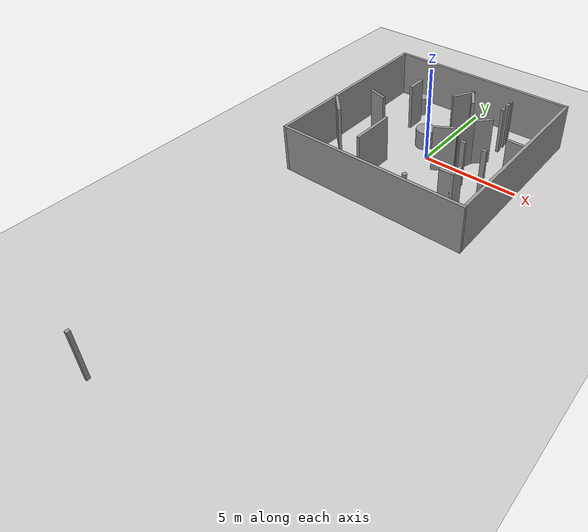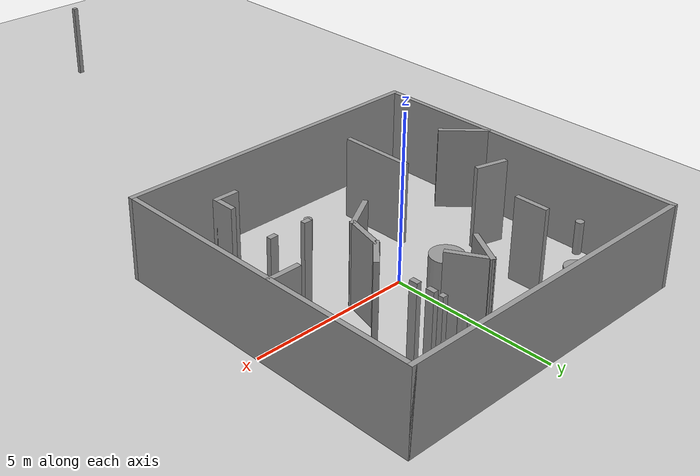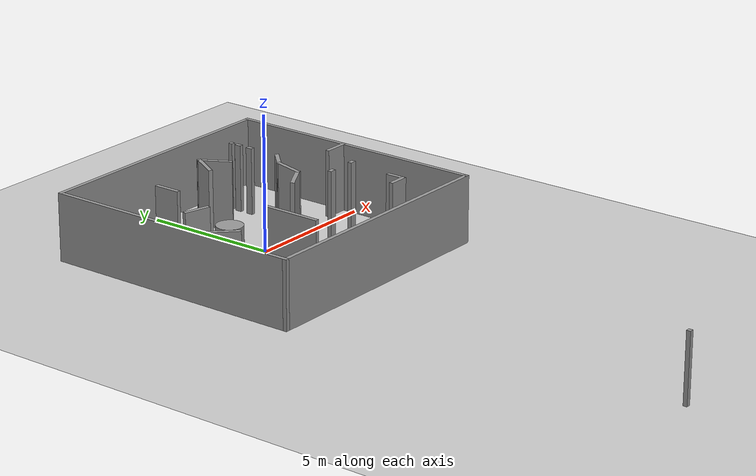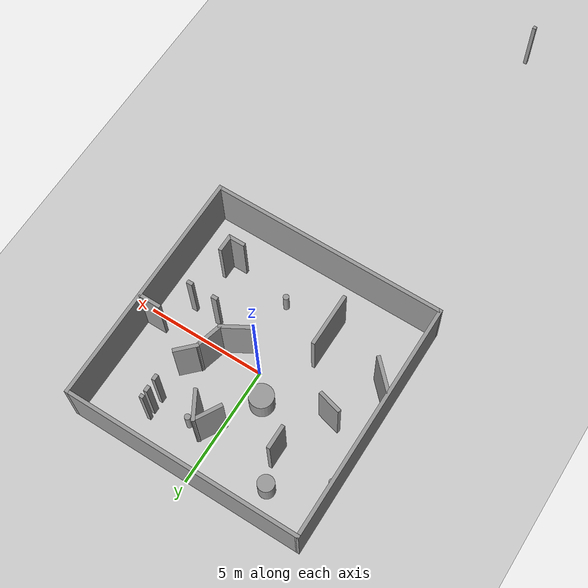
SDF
<sdf version="1.6">
 <world name="default">
  <light name="sun" type="directional">
   <pose>0 0 10 0 -0 0</pose>
   <diffuse>0.8 0.8 0.8 1</diffuse>
   <specular>0.2 0.2 0.2 1</specular>
   <attenuation>
    <range>1000</range>
    <constant>0.9</constant>
    <linear>0.01</linear>
    <quadratic>0.001</quadratic>
   </attenuation>
   <direction>-0.5 0.1 -0.9</direction>
  </light>
  <model name="ground_plane">
   <static>1</static>
   <link name="link">
    <collision name="collision">
     <geometry><plane><normal>0 0 1</normal><size>100 100</size></plane></geometry>
     <surface><friction><ode><mu>100</mu><mu2>50</mu2></ode></friction></surface>
    </collision>
    <visual name="visual">
     <cast_shadows>0</cast_shadows>
     <geometry><plane><normal>0 0 1</normal><size>100 100</size></plane></geometry>
     <material>
      <ambient>1 1 1 1</ambient>
      <diffuse>0.8 0.8 0.8 1</diffuse>
      <specular>0.01 0.01 0.01 1</specular>
     </material>
    </visual>
   </link>
  </model>
  <gravity>0 0 -9.8</gravity>
  <magnetic_field>6e-06 2.3e-05 -4.2e-05</magnetic_field>
  <atmosphere type="adiabatic"/>
  <physics name="default_physics" default="0" type="ode">
   <max_step_size>0.001</max_step_size>
   <real_time_factor>1</real_time_factor>
   <real_time_update_rate>1000</real_time_update_rate>
  </physics>
  <scene><ambient>0.4 0.4 0.4 1</ambient><background>0.7 0.7 0.7 1</background><shadows>1</shadows></scene>
  <spherical_coordinates>
   <surface_model>EARTH_WGS84</surface_model>
   <latitude_deg>0</latitude_deg>
   <longitude_deg>0</longitude_deg>
   <elevation>0</elevation>
   <heading_deg>0</heading_deg>
  </spherical_coordinates>
  <plugin name="gazebo_occupancy_map" filename="libgazebo_2Dmap_plugin.so">
   <map_resolution>0.05</map_resolution>
   <map_height>0.01</map_height>
   <map_size_x>50</map_size_x>
   <map_size_y>50</map_size_y>
  </plugin>
  <model name="10x10_training">
   <pose>0.025359 -0.006233 0 0 -0 0</pose>
   <link name="Wall_11">
    <collision name="Wall_11_Collision">
     <geometry><box><size>10 0.15 2.5</size></box></geometry>
     <pose>0 0 1.25 0 -0 0</pose>
    </collision>
    <visual name="Wall_11_Visual">
     <pose>0 0 1.25 0 -0 0</pose>
     <geometry><box><size>10 0.15 2.5</size></box></geometry>
     <material>
      <script><uri>file://media/materials/scripts/gazebo.material</uri><name>Gazebo/Grey</name></script>
      <ambient>1 1 1 1</ambient>
     </material>
     <meta><layer>0</layer></meta>
    </visual>
    <pose>0 -4.925 0 0 -0 3.14159</pose>
   </link>
   <link name="Wall_12">
    <collision name="Wall_12_Collision">
     <geometry><box><size>10 0.15 2.5</size></box></geometry>
     <pose>0 0 1.25 0 -0 0</pose>
    </collision>
    <visual name="Wall_12_Visual">
     <pose>0 0 1.25 0 -0 0</pose>
     <geometry><box><size>10 0.15 2.5</size></box></geometry>
     <material>
      <script><uri>file://media/materials/scripts/gazebo.material</uri><name>Gazebo/Grey</name></script>
      <ambient>1 1 1 1</ambient>
     </material>
     <meta><layer>0</layer></meta>
    </visual>
    <pose>-4.925 0 0 0 -0 1.5708</pose>
   </link>
   <link name="Wall_13">
    <collision name="Wall_13_Collision">
     <geometry><box><size>10 0.15 2.5</size></box></geometry>
     <pose>0 0 1.25 0 -0 0</pose>
    </collision>
    <visual name="Wall_13_Visual">
     <pose>0 0 1.25 0 -0 0</pose>
     <geometry><box><size>10 0.15 2.5</size></box></geometry>
     <material>
      <script><uri>file://media/materials/scripts/gazebo.material</uri><name>Gazebo/Grey</name></script>
      <ambient>1 1 1 1</ambient>
     </material>
     <meta><layer>0</layer></meta>
    </visual>
    <pose>0 4.925 0 0 -0 0</pose>
   </link>
   <link name="Wall_15">
    <collision name="Wall_15_Collision">
     <geometry><box><size>1 0.15 2.5</size></box></geometry>
     <pose>0 0 1.25 0 -0 0</pose>
    </collision>
    <visual name="Wall_15_Visual">
     <pose>0 0 1.25 0 -0 0</pose>
     <geometry><box><size>1 0.15 2.5</size></box></geometry>
     <material>
      <script><uri>file://media/materials/scripts/gazebo.material</uri><name>Gazebo/Grey</name></script>
      <ambient>1 1 1 1</ambient>
     </material>
     <meta><layer>0</layer></meta>
    </visual>
    <pose>-2.37163 2.36716 0 0 0 -1.5708</pose>
   </link>
   <link name="Wall_17">
    <collision name="Wall_17_Collision">
     <geometry><box><size>1.25 0.15 2.5</size></box></geometry>
     <pose>0 0 1.25 0 -0 0</pose>
    </collision>
    <visual name="Wall_17_Visual">
     <pose>0 0 1.25 0 -0 0</pose>
     <geometry><box><size>1.25 0.15 2.5</size></box></geometry>
     <material>
      <script><uri>file://media/materials/scripts/gazebo.material</uri><name>Gazebo/Grey</name></script>
      <ambient>1 1 1 1</ambient>
     </material>
     <meta><layer>0</layer></meta>
    </visual>
    <pose>0.198435 2.91724 0 0 0 -2.0944</pose>
   </link>
   <link name="Wall_19">
    <collision name="Wall_19_Collision">
     <geometry><box><size>1.25 0.15 2.5</size></box></geometry>
     <pose>0 0 1.25 0 -0 0</pose>
    </collision>
    <visual name="Wall_19_Visual">
     <pose>0 0 1.25 0 -0 0</pose>
     <geometry><box><size>1.25 0.15 2.5</size></box></geometry>
     <material>
      <script><uri>file://media/materials/scripts/gazebo.material</uri><name>Gazebo/Grey</name></script>
      <ambient>1 1 1 1</ambient>
     </material>
     <meta><layer>0</layer></meta>
    </visual>
    <pose>0.748435 2.91724 0 0 -0 2.0944</pose>
   </link>
   <link name="Wall_21">
    <collision name="Wall_21_Collision">
     <geometry><box><size>1 0.15 2.5</size></box></geometry>
     <pose>0 0 1.25 0 -0 0</pose>
    </collision>
    <visual name="Wall_21_Visual">
     <pose>0 0 1.25 0 -0 0</pose>
     <geometry><box><size>1 0.15 2.5</size></box></geometry>
     <material>
      <script><uri>file://media/materials/scripts/gazebo.material</uri><name>Gazebo/Grey</name></script>
      <ambient>1 1 1 1</ambient>
     </material>
     <meta><layer>0</layer></meta>
    </visual>
    <pose>-3.31415 0.24214 0 0 -0 2.87979</pose>
   </link>
   <link name="Wall_23">
    <collision name="Wall_23_Collision">
     <geometry><box><size>1 0.15 2.5</size></box></geometry>
     <pose>0 0 1.25 0 -0 0</pose>
    </collision>
    <visual name="Wall_23_Visual">
     <pose>0 0 1.25 0 -0 0</pose>
     <geometry><box><size>1 0.15 2.5</size></box></geometry>
     <material>
      <script><uri>file://media/materials/scripts/gazebo.material</uri><name>Gazebo/Grey</name></script>
      <ambient>1 1 1 1</ambient>
     </material>
     <meta><layer>0</layer></meta>
    </visual>
    <pose>2.25467 1.28885 0 0 0 -2.35619</pose>
   </link>
   <link name="Wall_24">
    <collision name="Wall_24_Collision">
     <geometry><box><size>1.25 0.15 2.5</size></box></geometry>
     <pose>0 0 1.25 0 -0 0</pose>
    </collision>
    <visual name="Wall_24_Visual">
     <pose>0 0 1.25 0 -0 0</pose>
     <geometry><box><size>1.25 0.15 2.5</size></box></geometry>
     <material>
      <script><uri>file://media/materials/scripts/gazebo.material</uri><name>Gazebo/Grey</name></script>
      <ambient>1 1 1 1</ambient>
     </material>
     <meta><layer>0</layer></meta>
    </visual>
    <pose>1.8118 0.45707 0 0 0 -1.8326</pose>
   </link>
   <link name="Wall_25">
    <collision name="Wall_25_Collision">
     <geometry><box><size>1.25 0.15 2.5</size></box></geometry>
     <pose>0 0 1.25 0 -0 0</pose>
    </collision>
    <visual name="Wall_25_Visual">
     <pose>0 0 1.25 0 -0 0</pose>
     <geometry><box><size>1.25 0.15 2.5</size></box></geometry>
     <material>
      <script><uri>file://media/materials/scripts/gazebo.material</uri><name>Gazebo/Grey</name></script>
      <ambient>1 1 1 1</ambient>
     </material>
     <meta><layer>0</layer></meta>
    </visual>
    <pose>1.19313 -0.349189 0 0 0 -2.61799</pose>
   </link>
   <link name="Wall_27">
    <collision name="Wall_27_Collision">
     <geometry><box><size>0.75 0.15 2.5</size></box></geometry>
     <pose>0 0 1.25 0 -0 0</pose>
    </collision>
    <visual name="Wall_27_Visual">
     <pose>0 0 1.25 0 -0 0</pose>
     <geometry><box><size>0.75 0.15 2.5</size></box></geometry>
     <material>
      <script><uri>file://media/materials/scripts/gazebo.material</uri><name>Gazebo/Grey</name></script>
      <ambient>1 1 1 1</ambient>
     </material>
     <meta><layer>0</layer></meta>
    </visual>
    <pose>3.41102 -3.03745 0 0 -0 1.5708</pose>
   </link>
   <link name="Wall_29">
    <collision name="Wall_29_Collision">
     <geometry><box><size>0.75 0.15 2.5</size></box></geometry>
     <pose>0 0 1.25 0 -0 0</pose>
    </collision>
    <visual name="Wall_29_Visual">
     <pose>0 0 1.25 0 -0 0</pose>
     <geometry><box><size>0.75 0.15 2.5</size></box></geometry>
     <material>
      <script><uri>file://media/materials/scripts/gazebo.material</uri><name>Gazebo/Grey</name></script>
      <ambient>1 1 1 1</ambient>
     </material>
     <meta><layer>0</layer></meta>
    </visual>
    <pose>3.11102 -3.33745 0 0 -0 3.14159</pose>
   </link>
   <link name="Wall_31">
    <collision name="Wall_31_Collision">
     <geometry><box><size>2.25 0.15 2.5</size></box></geometry>
     <pose>0 0 1.25 0 -0 0</pose>
    </collision>
    <visual name="Wall_31_Visual">
     <pose>0 0 1.25 0 -0 0</pose>
     <geometry><box><size>2.25 0.15 2.5</size></box></geometry>
     <material>
      <script><uri>file://media/materials/scripts/gazebo.material</uri><name>Gazebo/Grey</name></script>
      <ambient>1 1 1 1</ambient>
     </material>
     <meta><layer>0</layer></meta>
    </visual>
    <pose>-1.60832 -2.44448 0 0 0 -1.5708</pose>
   </link>
   <link name="Wall_33">
    <collision name="Wall_33_Collision">
     <geometry><box><size>1 0.15 2.5</size></box></geometry>
     <pose>0 0 1.25 0 -0 0</pose>
    </collision>
    <visual name="Wall_33_Visual">
     <pose>0 0 1.25 0 -0 0</pose>
     <geometry><box><size>1 0.15 2.5</size></box></geometry>
     <material>
      <script><uri>file://media/materials/scripts/gazebo.material</uri><name>Gazebo/Grey</name></script>
      <ambient>1 1 1 1</ambient>
     </material>
     <meta><layer>0</layer></meta>
    </visual>
    <pose>4.48951 0.45597 0 0 -0 3.14159</pose>
   </link>
   <link name="Wall_35">
    <collision name="Wall_35_Collision">
     <geometry><box><size>1.5 0.15 2.5</size></box></geometry>
     <pose>0 0 1.25 0 -0 0</pose>
    </collision>
    <visual name="Wall_35_Visual">
     <pose>0 0 1.25 0 -0 0</pose>
     <geometry><box><size>1.5 0.15 2.5</size></box></geometry>
     <material>
      <script><uri>file://media/materials/scripts/gazebo.material</uri><name>Gazebo/Grey</name></script>
      <ambient>1 1 1 1</ambient>
     </material>
     <meta><layer>0</layer></meta>
    </visual>
    <pose>-4.41557 -1.6636 0 0 0 -0.785398</pose>
   </link>
   <link name="Wall_9">
    <collision name="Wall_9_Collision">
     <geometry><box><size>10 0.15 2.5</size></box></geometry>
     <pose>0 0 1.25 0 -0 0</pose>
    </collision>
    <visual name="Wall_9_Visual">
     <pose>0 0 1.25 0 -0 0</pose>
     <geometry><box><size>10 0.15 2.5</size></box></geometry>
     <material>
      <script><uri>file://media/materials/scripts/gazebo.material</uri><name>Gazebo/Grey</name></script>
      <ambient>1 1 1 1</ambient>
     </material>
     <meta><layer>0</layer></meta>
    </visual>
    <pose>4.925 0 0 0 0 -1.5708</pose>
   </link>
   <static>1</static>
  </model>
  <model name="unit_cylinder">
   <pose>-0.748615 0.967609 0.499993 0 0 -3e-06</pose>
   <link name="link">
    <inertial>
     <mass>1</mass>
     <inertia><ixx>0.145833</ixx><ixy>0</ixy><ixz>0</ixz><iyy>0.145833</iyy><iyz>0</iyz><izz>0.125</izz></inertia>
    </inertial>
    <collision name="collision">
     <geometry><cylinder><radius>0.5</radius><length>1</length></cylinder></geometry>
    </collision>
    <visual name="visual">
     <geometry><cylinder><radius>0.5</radius><length>1</length></cylinder></geometry>
     <material>
      <script><name>Gazebo/Grey</name><uri>file://media/materials/scripts/gazebo.material</uri></script>
     </material>
    </visual>
   </link>
  </model>
  <model name="unit_cylinder_clone">
   <pose>0.641614 -2.90006 0.499997 0 0 -1e-06</pose>
   <link name="link">
    <inertial>
     <mass>1</mass>
     <inertia><ixx>0.145833</ixx><ixy>0</ixy><ixz>0</ixz><iyy>0.145833</iyy><iyz>0</iyz><izz>0.125</izz></inertia>
    </inertial>
    <collision name="collision">
     <geometry><cylinder><radius>0.122936</radius><length>1</length></cylinder></geometry>
    </collision>
    <visual name="visual">
     <geometry><cylinder><radius>0.122936</radius><length>1</length></cylinder></geometry>
     <material>
      <script><name>Gazebo/Grey</name><uri>file://media/materials/scripts/gazebo.material</uri></script>
     </material>
    </visual>
   </link>
  </model>
  <model name="unit_cylinder_clone_0">
   <pose>-4.70171 2.33372 0.499991 0 -0 3e-06</pose>
   <link name="link">
    <inertial>
     <mass>1</mass>
     <inertia><ixx>0.145833</ixx><ixy>0</ixy><ixz>0</ixz><iyy>0.145833</iyy><iyz>0</iyz><izz>0.125</izz></inertia>
    </inertial>
    <collision name="collision">
     <geometry><cylinder><radius>0.122936</radius><length>1</length></cylinder></geometry>
    </collision>
    <visual name="visual">
     <geometry><cylinder><radius>0.122936</radius><length>1</length></cylinder></geometry>
     <material>
      <script><name>Gazebo/Grey</name><uri>file://media/materials/scripts/gazebo.material</uri></script>
     </material>
    </visual>
   </link>
  </model>
  <model name="unit_cylinder_clone_1">
   <pose>1.11716 3.10134 0.499997 0 0 -3e-06</pose>
   <link name="link">
    <inertial>
     <mass>1</mass>
     <inertia><ixx>0.145833</ixx><ixy>0</ixy><ixz>0</ixz><iyy>0.145833</iyy><iyz>0</iyz><izz>0.125</izz></inertia>
    </inertial>
    <collision name="collision">
     <geometry><cylinder><radius>0.122936</radius><length>1</length></cylinder></geometry>
    </collision>
    <visual name="visual">
     <geometry><cylinder><radius>0.122936</radius><length>1</length></cylinder></geometry>
     <material>
      <script><name>Gazebo/Grey</name><uri>file://media/materials/scripts/gazebo.material</uri></script>
     </material>
    </visual>
   </link>
  </model>
  <model name="unit_cylinder_clone_clone">
   <pose>-2.70695 3.6543 0.499999 1e-06 -0 -1e-06</pose>
   <link name="link">
    <inertial>
     <mass>1</mass>
     <inertia><ixx>0.145833</ixx><ixy>0</ixy><ixz>0</ixz><iyy>0.145833</iyy><iyz>0</iyz><izz>0.125</izz></inertia>
    </inertial>
    <collision name="collision">
     <geometry><cylinder><radius>0.336823</radius><length>1</length></cylinder></geometry>
    </collision>
    <visual name="visual">
     <geometry><cylinder><radius>0.336823</radius><length>1</length></cylinder></geometry>
     <material>
      <script><name>Gazebo/Grey</name><uri>file://media/materials/scripts/gazebo.material</uri></script>
     </material>
    </visual>
   </link>
  </model>
  <model name="extra_gaps">
   <pose>0.885573 -7.24674 0 0 -0 0</pose>
   <link name="Wall_39">
    <collision name="Wall_39_Collision">
     <geometry><box><size>0.15 0.15 2.5</size></box></geometry>
     <pose>0 0 1.25 0 -0 0</pose>
    </collision>
    <visual name="Wall_39_Visual">
     <pose>0 0 1.25 0 -0 0</pose>
     <geometry><box><size>0.15 0.15 2.5</size></box></geometry>
     <material>
      <script><uri>file://media/materials/scripts/gazebo.material</uri><name>Gazebo/Grey</name></script>
      <ambient>1 1 1 1</ambient>
     </material>
     <meta><layer>0</layer></meta>
    </visual>
    <pose>-2.7906 -10.8978 0 0 -0 0</pose>
   </link>
   <link name="Wall_46">
    <collision name="Wall_46_Collision">
     <geometry><box><size>0.16 0.15 2.5</size></box></geometry>
     <pose>0 0 1.25 0 -0 0</pose>
    </collision>
    <visual name="Wall_46_Visual">
     <pose>0 0 1.25 0 -0 0</pose>
     <geometry><box><size>0.16 0.15 2.5</size></box></geometry>
     <material>
      <script><uri>file://media/materials/scripts/gazebo.material</uri><name>Gazebo/Grey</name></script>
      <ambient>1 1 1 1</ambient>
     </material>
     <meta><layer>0</layer></meta>
    </visual>
    <pose>1.66561 10.8978 0 0 -0 0</pose>
   </link>
   <link name="Wall_48">
    <collision name="Wall_48_Collision">
     <geometry><box><size>0.25 0.15 2.5</size></box></geometry>
     <pose>0 0 1.25 0 -0 0</pose>
    </collision>
    <visual name="Wall_48_Visual">
     <pose>0 0 1.25 0 -0 0</pose>
     <geometry><box><size>0.25 0.15 2.5</size></box></geometry>
     <material>
      <script><uri>file://media/materials/scripts/gazebo.material</uri><name>Gazebo/Grey</name></script>
      <ambient>1 1 1 1</ambient>
     </material>
     <meta><layer>0</layer></meta>
    </visual>
    <pose>1.6706 10.5678 0 0 0 -1.5708</pose>
   </link>
   <link name="Wall_50">
    <collision name="Wall_50_Collision">
     <geometry><box><size>0.25 0.15 2.5</size></box></geometry>
     <pose>0 0 1.25 0 -0 0</pose>
    </collision>
    <visual name="Wall_50_Visual">
     <pose>0 0 1.25 0 -0 0</pose>
     <geometry><box><size>0.25 0.15 2.5</size></box></geometry>
     <material>
      <script><uri>file://media/materials/scripts/gazebo.material</uri><name>Gazebo/Grey</name></script>
      <ambient>1 1 1 1</ambient>
     </material>
     <meta><layer>0</layer></meta>
    </visual>
    <pose>1.6806 10.0578 0 0 0 -1.5708</pose>
   </link>
   <link name="Wall_54">
    <collision name="Wall_54_Collision">
     <geometry><box><size>0.25 0.15 2.5</size></box></geometry>
     <pose>0 0 1.25 0 -0 0</pose>
    </collision>
    <visual name="Wall_54_Visual">
     <pose>0 0 1.25 0 -0 0</pose>
     <geometry><box><size>0.25 0.15 2.5</size></box></geometry>
     <material>
      <script><uri>file://media/materials/scripts/gazebo.material</uri><name>Gazebo/Grey</name></script>
      <ambient>1 1 1 1</ambient>
     </material>
     <meta><layer>0</layer></meta>
    </visual>
    <pose>1.62061 6.30778 0 0 -0 0</pose>
   </link>
   <link name="Wall_56">
    <collision name="Wall_56_Collision">
     <geometry><box><size>0.25 0.15 2.5</size></box></geometry>
     <pose>0 0 1.25 0 -0 0</pose>
    </collision>
    <visual name="Wall_56_Visual">
     <pose>0 0 1.25 0 -0 0</pose>
     <geometry><box><size>0.25 0.15 2.5</size></box></geometry>
     <material>
      <script><uri>file://media/materials/scripts/gazebo.material</uri><name>Gazebo/Grey</name></script>
      <ambient>1 1 1 1</ambient>
     </material>
     <meta><layer>0</layer></meta>
    </visual>
    <pose>2.7406 6.29779 0 0 -0 0</pose>
   </link>
   <static>1</static>
  </model>
 </world>
</sdf>
